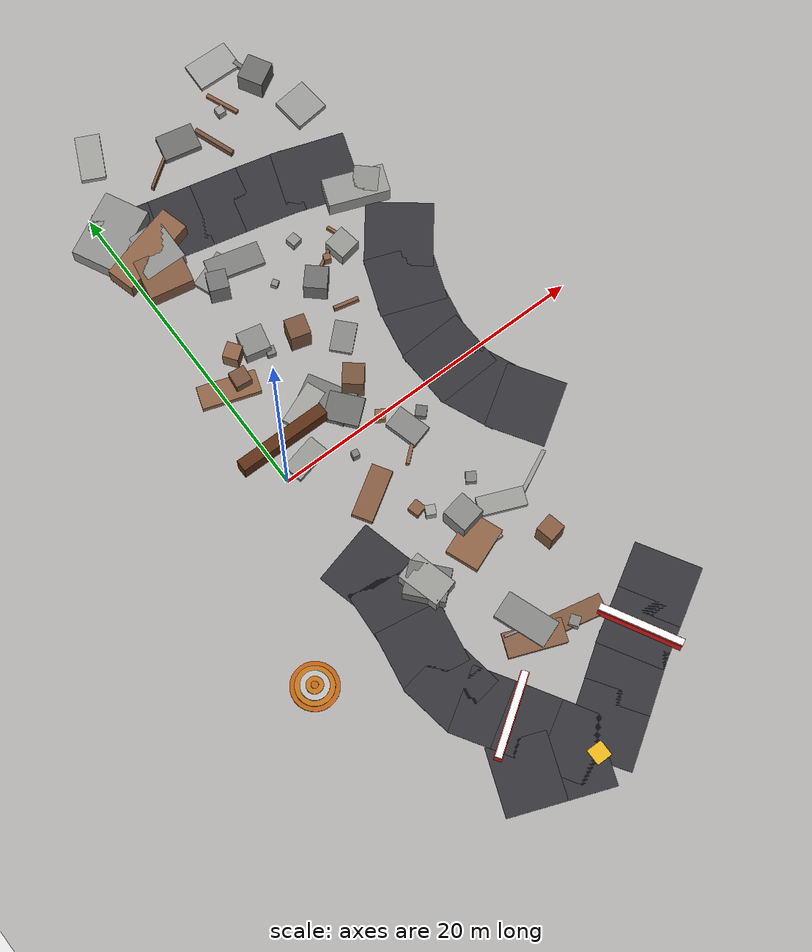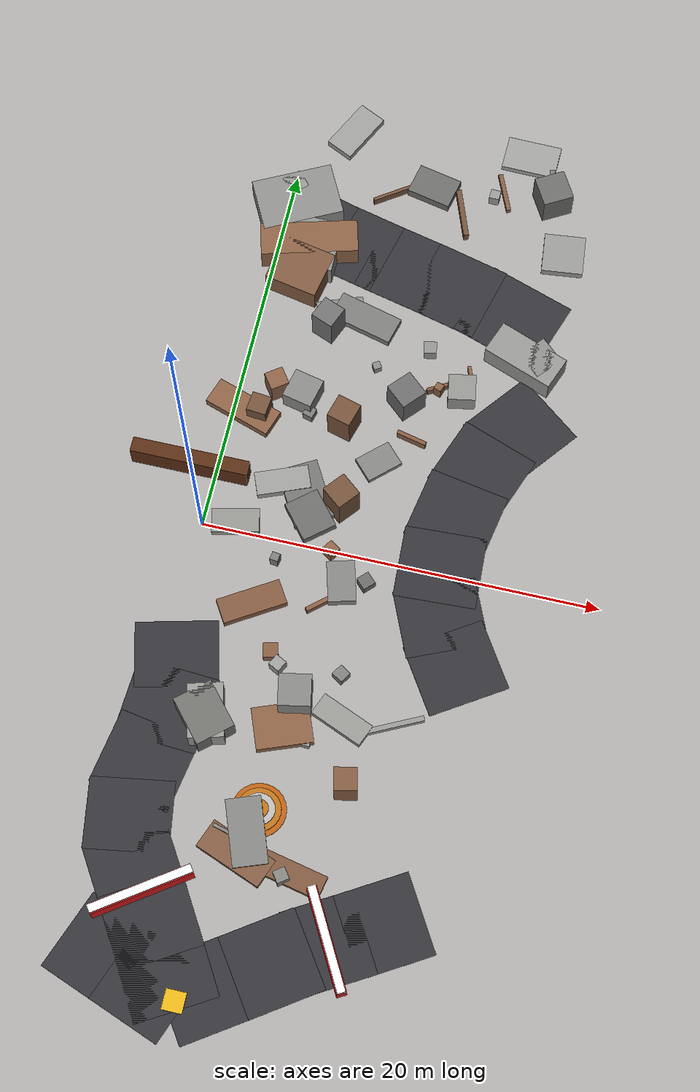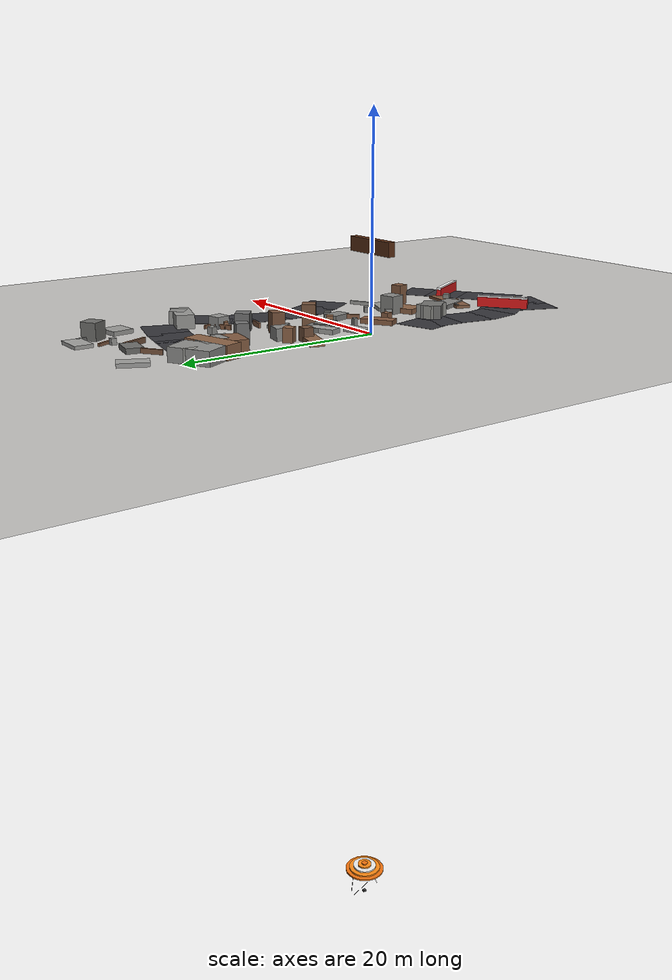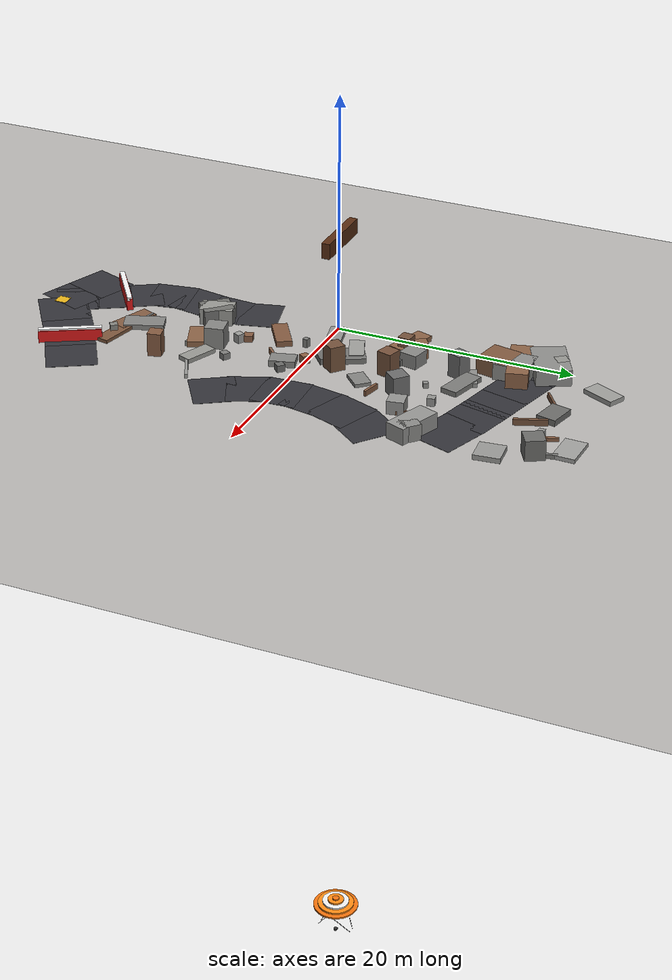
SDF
<sdf version="1.6">
 <world name="navitas_arena">
  <model name="ground_plane">
   <static>true</static>
   <link name="link">
    <collision name="collision">
     <geometry><plane><normal>0 0 1</normal><size>400 400</size></plane></geometry>
     <surface><friction><ode><mu>0.620</mu><mu2>0.620</mu2></ode></friction></surface>
    </collision>
    <visual name="visual">
     <cast_shadows>false</cast_shadows>
     <geometry><plane><normal>0 0 1</normal><size>400 400</size></plane></geometry>
     <material><ambient>0.250 0.230 0.200 1</ambient><diffuse>0.250 0.230 0.200 1</diffuse></material>
    </visual>
   </link>
  </model>
  <model name="road_orta_1_0">
   <static>true</static>
   <pose>3.244 -22.494 0.040 0 0 2.784</pose>
   <link name="link">
    <collision name="col"><geometry><box><size>3.792 4.100 0.020</size></box></geometry></collision>
    <visual name="vis">
     <geometry><box><size>3.792 4.100 0.020</size></box></geometry>
     <material><ambient>0.20 0.20 0.22 1</ambient><diffuse>0.20 0.20 0.22 1</diffuse></material>
    </visual>
   </link>
  </model>
  <model name="road_orta_1_1">
   <static>true</static>
   <pose>0.624 -21.514 0.040 0 0 2.783</pose>
   <link name="link">
    <collision name="col"><geometry><box><size>3.602 4.100 0.020</size></box></geometry></collision>
    <visual name="vis">
     <geometry><box><size>3.602 4.100 0.020</size></box></geometry>
     <material><ambient>0.20 0.20 0.22 1</ambient><diffuse>0.20 0.20 0.22 1</diffuse></material>
    </visual>
   </link>
  </model>
  <model name="road_orta_2_0">
   <static>true</static>
   <pose>3.960 -21.935 0.040 0 0 2.111</pose>
   <link name="link">
    <collision name="col"><geometry><box><size>3.383 4.100 0.020</size></box></geometry></collision>
    <visual name="vis">
     <geometry><box><size>3.383 4.100 0.020</size></box></geometry>
     <material><ambient>0.20 0.20 0.22 1</ambient><diffuse>0.20 0.20 0.22 1</diffuse></material>
    </visual>
   </link>
  </model>
  <model name="road_orta_2_1">
   <static>true</static>
   <pose>2.600 -19.687 0.040 0 0 2.119</pose>
   <link name="link">
    <collision name="col"><geometry><box><size>3.672 4.100 0.020</size></box></geometry></collision>
    <visual name="vis">
     <geometry><box><size>3.672 4.100 0.020</size></box></geometry>
     <material><ambient>0.20 0.20 0.22 1</ambient><diffuse>0.20 0.20 0.22 1</diffuse></material>
    </visual>
   </link>
  </model>
  <model name="road_orta_2_2">
   <static>true</static>
   <pose>1.193 -17.414 0.040 0 0 2.132</pose>
   <link name="link">
    <collision name="col"><geometry><box><size>3.474 4.100 0.020</size></box></geometry></collision>
    <visual name="vis">
     <geometry><box><size>3.474 4.100 0.020</size></box></geometry>
     <material><ambient>0.20 0.20 0.22 1</ambient><diffuse>0.20 0.20 0.22 1</diffuse></material>
    </visual>
   </link>
  </model>
  <model name="road_orta_2_3">
   <static>true</static>
   <pose>0.302 -15.042 0.040 0 0 1.731</pose>
   <link name="link">
    <collision name="col"><geometry><box><size>3.498 4.100 0.020</size></box></geometry></collision>
    <visual name="vis">
     <geometry><box><size>3.498 4.100 0.020</size></box></geometry>
     <material><ambient>0.20 0.20 0.22 1</ambient><diffuse>0.20 0.20 0.22 1</diffuse></material>
    </visual>
   </link>
  </model>
  <model name="road_orta_2_4">
   <static>true</static>
   <pose>0.334 -12.340 0.040 0 0 1.403</pose>
   <link name="link">
    <collision name="col"><geometry><box><size>3.780 4.100 0.020</size></box></geometry></collision>
    <visual name="vis">
     <geometry><box><size>3.780 4.100 0.020</size></box></geometry>
     <material><ambient>0.20 0.20 0.22 1</ambient><diffuse>0.20 0.20 0.22 1</diffuse></material>
    </visual>
   </link>
  </model>
  <model name="road_orta_2_5">
   <static>true</static>
   <pose>0.666 -9.460 0.040 0 0 1.509</pose>
   <link name="link">
    <collision name="col"><geometry><box><size>3.826 4.100 0.020</size></box></geometry></collision>
    <visual name="vis">
     <geometry><box><size>3.826 4.100 0.020</size></box></geometry>
     <material><ambient>0.20 0.20 0.22 1</ambient><diffuse>0.20 0.20 0.22 1</diffuse></material>
    </visual>
   </link>
  </model>
  <model name="road_orta_2_6">
   <static>true</static>
   <pose>0.462 -6.833 0.040 0 0 1.818</pose>
   <link name="link">
    <collision name="col"><geometry><box><size>3.307 4.100 0.020</size></box></geometry></collision>
    <visual name="vis">
     <geometry><box><size>3.307 4.100 0.020</size></box></geometry>
     <material><ambient>0.20 0.20 0.22 1</ambient><diffuse>0.20 0.20 0.22 1</diffuse></material>
    </visual>
   </link>
  </model>
  <model name="road_orta_3_0">
   <static>true</static>
   <pose>5.971 -22.070 0.040 0 0 0.595</pose>
   <link name="link">
    <collision name="col"><geometry><box><size>4.216 4.100 0.020</size></box></geometry></collision>
    <visual name="vis">
     <geometry><box><size>4.216 4.100 0.020</size></box></geometry>
     <material><ambient>0.20 0.20 0.22 1</ambient><diffuse>0.20 0.20 0.22 1</diffuse></material>
    </visual>
   </link>
  </model>
  <model name="road_orta_3_1">
   <static>true</static>
   <pose>8.537 -20.320 0.040 0 0 0.602</pose>
   <link name="link">
    <collision name="col"><geometry><box><size>3.795 4.100 0.020</size></box></geometry></collision>
    <visual name="vis">
     <geometry><box><size>3.795 4.100 0.020</size></box></geometry>
     <material><ambient>0.20 0.20 0.22 1</ambient><diffuse>0.20 0.20 0.22 1</diffuse></material>
    </visual>
   </link>
  </model>
  <model name="road_orta_3_2">
   <static>true</static>
   <pose>10.865 -18.833 0.040 0 0 0.531</pose>
   <link name="link">
    <collision name="col"><geometry><box><size>3.533 4.100 0.020</size></box></geometry></collision>
    <visual name="vis">
     <geometry><box><size>3.533 4.100 0.020</size></box></geometry>
     <material><ambient>0.20 0.20 0.22 1</ambient><diffuse>0.20 0.20 0.22 1</diffuse></material>
    </visual>
   </link>
  </model>
  <model name="road_orta_3_3">
   <static>true</static>
   <pose>13.203 -17.444 0.040 0 0 0.541</pose>
   <link name="link">
    <collision name="col"><geometry><box><size>3.705 4.100 0.020</size></box></geometry></collision>
    <visual name="vis">
     <geometry><box><size>3.705 4.100 0.020</size></box></geometry>
     <material><ambient>0.20 0.20 0.22 1</ambient><diffuse>0.20 0.20 0.22 1</diffuse></material>
    </visual>
   </link>
  </model>
  <model name="road_orta_3_8">
   <static>true</static>
   <pose>13.798 -4.500 0.040 0 0 2.146</pose>
   <link name="link">
    <collision name="col"><geometry><box><size>3.681 4.100 0.020</size></box></geometry></collision>
    <visual name="vis">
     <geometry><box><size>3.681 4.100 0.020</size></box></geometry>
     <material><ambient>0.20 0.20 0.22 1</ambient><diffuse>0.20 0.20 0.22 1</diffuse></material>
    </visual>
   </link>
  </model>
  <model name="road_orta_3_9">
   <static>true</static>
   <pose>12.531 -2.167 0.040 0 0 1.983</pose>
   <link name="link">
    <collision name="col"><geometry><box><size>3.447 4.100 0.020</size></box></geometry></collision>
    <visual name="vis">
     <geometry><box><size>3.447 4.100 0.020</size></box></geometry>
     <material><ambient>0.20 0.20 0.22 1</ambient><diffuse>0.20 0.20 0.22 1</diffuse></material>
    </visual>
   </link>
  </model>
  <model name="road_orta_3_10">
   <static>true</static>
   <pose>11.952 0.400 0.040 0 0 1.619</pose>
   <link name="link">
    <collision name="col"><geometry><box><size>3.703 4.100 0.020</size></box></geometry></collision>
    <visual name="vis">
     <geometry><box><size>3.703 4.100 0.020</size></box></geometry>
     <material><ambient>0.20 0.20 0.22 1</ambient><diffuse>0.20 0.20 0.22 1</diffuse></material>
    </visual>
   </link>
  </model>
  <model name="road_orta_3_11">
   <static>true</static>
   <pose>12.137 3.200 0.040 0 0 1.392</pose>
   <link name="link">
    <collision name="col"><geometry><box><size>3.745 4.100 0.020</size></box></geometry></collision>
    <visual name="vis">
     <geometry><box><size>3.745 4.100 0.020</size></box></geometry>
     <material><ambient>0.20 0.20 0.22 1</ambient><diffuse>0.20 0.20 0.22 1</diffuse></material>
    </visual>
   </link>
  </model>
  <model name="road_orta_3_12">
   <static>true</static>
   <pose>12.866 5.898 0.040 0 0 1.218</pose>
   <link name="link">
    <collision name="col"><geometry><box><size>3.666 4.100 0.020</size></box></geometry></collision>
    <visual name="vis">
     <geometry><box><size>3.666 4.100 0.020</size></box></geometry>
     <material><ambient>0.20 0.20 0.22 1</ambient><diffuse>0.20 0.20 0.22 1</diffuse></material>
    </visual>
   </link>
  </model>
  <model name="road_orta_3_13">
   <static>true</static>
   <pose>14.305 8.426 0.040 0 0 0.908</pose>
   <link name="link">
    <collision name="col"><geometry><box><size>4.023 4.100 0.020</size></box></geometry></collision>
    <visual name="vis">
     <geometry><box><size>4.023 4.100 0.020</size></box></geometry>
     <material><ambient>0.20 0.20 0.22 1</ambient><diffuse>0.20 0.20 0.22 1</diffuse></material>
    </visual>
   </link>
  </model>
  <model name="road_orta_3_16">
   <static>true</static>
   <pose>12.677 14.505 0.040 0 0 2.813</pose>
   <link name="link">
    <collision name="col"><geometry><box><size>4.605 4.100 0.020</size></box></geometry></collision>
    <visual name="vis">
     <geometry><box><size>4.605 4.100 0.020</size></box></geometry>
     <material><ambient>0.20 0.20 0.22 1</ambient><diffuse>0.20 0.20 0.22 1</diffuse></material>
    </visual>
   </link>
  </model>
  <model name="road_orta_3_17">
   <static>true</static>
   <pose>9.507 15.463 0.040 0 0 2.893</pose>
   <link name="link">
    <collision name="col"><geometry><box><size>3.823 4.100 0.020</size></box></geometry></collision>
    <visual name="vis">
     <geometry><box><size>3.823 4.100 0.020</size></box></geometry>
     <material><ambient>0.20 0.20 0.22 1</ambient><diffuse>0.20 0.20 0.22 1</diffuse></material>
    </visual>
   </link>
  </model>
  <model name="road_orta_3_18">
   <static>true</static>
   <pose>6.639 16.163 0.040 0 0 2.911</pose>
   <link name="link">
    <collision name="col"><geometry><box><size>3.882 4.100 0.020</size></box></geometry></collision>
    <visual name="vis">
     <geometry><box><size>3.882 4.100 0.020</size></box></geometry>
     <material><ambient>0.20 0.20 0.22 1</ambient><diffuse>0.20 0.20 0.22 1</diffuse></material>
    </visual>
   </link>
  </model>
  <model name="road_orta_3_19">
   <static>true</static>
   <pose>3.840 16.836 0.040 0 0 2.900</pose>
   <link name="link">
    <collision name="col"><geometry><box><size>3.674 4.100 0.020</size></box></geometry></collision>
    <visual name="vis">
     <geometry><box><size>3.674 4.100 0.020</size></box></geometry>
     <material><ambient>0.20 0.20 0.22 1</ambient><diffuse>0.20 0.20 0.22 1</diffuse></material>
    </visual>
   </link>
  </model>
  <model name="road_orta_3_20">
   <static>true</static>
   <pose>1.225 17.537 0.040 0 0 2.859</pose>
   <link name="link">
    <collision name="col"><geometry><box><size>3.543 4.100 0.020</size></box></geometry></collision>
    <visual name="vis">
     <geometry><box><size>3.543 4.100 0.020</size></box></geometry>
     <material><ambient>0.20 0.20 0.22 1</ambient><diffuse>0.20 0.20 0.22 1</diffuse></material>
    </visual>
   </link>
  </model>
  <model name="bar_orta_2">
   <static>true</static>
   <pose>1.878 -18.504 0.500 0 0 3.754</pose>
   <link name="link">
    <collision name="col"><geometry><box><size>5.100 0.500 1.000</size></box></geometry></collision>
    <visual name="vis">
     <geometry><box><size>5.100 0.500 1.000</size></box></geometry>
     <material><ambient>0.85 0.10 0.10 1</ambient><diffuse>0.85 0.10 0.10 1</diffuse></material>
    </visual>
   </link>
  </model>
  <model name="bar_orta_2b">
   <static>true</static>
   <pose>1.878 -18.504 1.000 0 0 3.754</pose>
   <link name="link">
    <collision name="col"><geometry><box><size>5.100 0.400 0.300</size></box></geometry></collision>
    <visual name="vis">
     <geometry><box><size>5.100 0.400 0.300</size></box></geometry>
     <material><ambient>0.95 0.95 0.95 1</ambient><diffuse>0.95 0.95 0.95 1</diffuse></material>
    </visual>
   </link>
  </model>
  <model name="blk_orta_2_0_0">
   <static>true</static>
   <pose>2.657 -9.725 0.675 0 0 2.285</pose>
   <link name="link">
    <collision name="col"><geometry><box><size>2.524 2.005 1.350</size></box></geometry></collision>
    <visual name="vis">
     <geometry><box><size>2.524 2.005 1.350</size></box></geometry>
     <material><ambient>0.44 0.44 0.43 1</ambient><diffuse>0.44 0.44 0.43 1</diffuse></material>
    </visual>
   </link>
  </model>
  <model name="blk_orta_2_0_2">
   <static>true</static>
   <pose>2.701 -9.611 0.675 0 0 1.836</pose>
   <link name="link">
    <collision name="col"><geometry><box><size>2.699 1.733 1.350</size></box></geometry></collision>
    <visual name="vis">
     <geometry><box><size>2.699 1.733 1.350</size></box></geometry>
     <material><ambient>0.59 0.59 0.57 1</ambient><diffuse>0.59 0.59 0.57 1</diffuse></material>
    </visual>
   </link>
  </model>
  <model name="blk_orta_2_2_4">
   <static>true</static>
   <pose>1.513 14.381 0.675 0 0 1.376</pose>
   <link name="link">
    <collision name="col"><geometry><box><size>2.535 2.758 1.350</size></box></geometry></collision>
    <visual name="vis">
     <geometry><box><size>2.535 2.758 1.350</size></box></geometry>
     <material><ambient>0.50 0.35 0.25 1</ambient><diffuse>0.50 0.35 0.25 1</diffuse></material>
    </visual>
   </link>
  </model>
  <model name="bar_orta_3">
   <static>true</static>
   <pose>10.793 -18.837 0.500 0 0 2.078</pose>
   <link name="link">
    <collision name="col"><geometry><box><size>5.100 0.500 1.000</size></box></geometry></collision>
    <visual name="vis">
     <geometry><box><size>5.100 0.500 1.000</size></box></geometry>
     <material><ambient>0.85 0.10 0.10 1</ambient><diffuse>0.85 0.10 0.10 1</diffuse></material>
    </visual>
   </link>
  </model>
  <model name="bar_orta_3b">
   <static>true</static>
   <pose>10.793 -18.837 1.000 0 0 2.078</pose>
   <link name="link">
    <collision name="col"><geometry><box><size>5.100 0.400 0.300</size></box></geometry></collision>
    <visual name="vis">
     <geometry><box><size>5.100 0.400 0.300</size></box></geometry>
     <material><ambient>0.95 0.95 0.95 1</ambient><diffuse>0.95 0.95 0.95 1</diffuse></material>
    </visual>
   </link>
  </model>
  <model name="blk_orta_3_1_2">
   <static>true</static>
   <pose>14.538 12.041 0.675 0 0 0.830</pose>
   <link name="link">
    <collision name="col"><geometry><box><size>1.532 1.532 1.350</size></box></geometry></collision>
    <visual name="vis">
     <geometry><box><size>1.532 1.532 1.350</size></box></geometry>
     <material><ambient>0.54 0.54 0.53 1</ambient><diffuse>0.54 0.54 0.53 1</diffuse></material>
    </visual>
   </link>
  </model>
  <model name="blk_orta_3_1_4">
   <static>true</static>
   <pose>13.790 12.033 0.675 0 0 2.778</pose>
   <link name="link">
    <collision name="col"><geometry><box><size>3.763 1.753 1.350</size></box></geometry></collision>
    <visual name="vis">
     <geometry><box><size>3.763 1.753 1.350</size></box></geometry>
     <material><ambient>0.58 0.58 0.57 1</ambient><diffuse>0.58 0.58 0.57 1</diffuse></material>
    </visual>
   </link>
  </model>
  <model name="blk_orta_3_2_0">
   <static>true</static>
   <pose>1.579 16.089 0.675 0 0 0.266</pose>
   <link name="link">
    <collision name="col"><geometry><box><size>4.996 1.764 1.350</size></box></geometry></collision>
    <visual name="vis">
     <geometry><box><size>4.996 1.764 1.350</size></box></geometry>
     <material><ambient>0.54 0.38 0.27 1</ambient><diffuse>0.54 0.38 0.27 1</diffuse></material>
    </visual>
   </link>
  </model>
  <model name="blk_orta_3_2_1">
   <static>true</static>
   <pose>0.437 18.267 0.675 0 0 0.473</pose>
   <link name="link">
    <collision name="col"><geometry><box><size>4.202 2.830 1.350</size></box></geometry></collision>
    <visual name="vis">
     <geometry><box><size>4.202 2.830 1.350</size></box></geometry>
     <material><ambient>0.55 0.55 0.54 1</ambient><diffuse>0.55 0.55 0.54 1</diffuse></material>
    </visual>
   </link>
  </model>
  <model name="blk_orta_3_2_4">
   <static>true</static>
   <pose>1.823 15.852 0.675 0 0 1.564</pose>
   <link name="link">
    <collision name="col"><geometry><box><size>2.803 2.633 1.350</size></box></geometry></collision>
    <visual name="vis">
     <geometry><box><size>2.803 2.633 1.350</size></box></geometry>
     <material><ambient>0.55 0.55 0.54 1</ambient><diffuse>0.55 0.55 0.54 1</diffuse></material>
    </visual>
   </link>
  </model>
  <model name="blk_orta_3_2_5">
   <static>true</static>
   <pose>0.141 19.080 0.675 0 0 2.270</pose>
   <link name="link">
    <collision name="col"><geometry><box><size>1.008 1.008 1.350</size></box></geometry></collision>
    <visual name="vis">
     <geometry><box><size>1.008 1.008 1.350</size></box></geometry>
     <material><ambient>0.58 0.58 0.56 1</ambient><diffuse>0.58 0.58 0.56 1</diffuse></material>
    </visual>
   </link>
  </model>
  <model name="deb_orta_0">
   <static>true</static>
   <pose>9.101 6.675 0.242 0 0 2.915</pose>
   <link name="link">
    <collision name="col"><geometry><box><size>1.557 0.203 0.483</size></box></geometry></collision>
    <visual name="vis">
     <geometry><box><size>1.557 0.203 0.483</size></box></geometry>
     <material><ambient>0.52 0.36 0.26 1</ambient><diffuse>0.52 0.36 0.26 1</diffuse></material>
    </visual>
   </link>
  </model>
  <model name="deb_orta_1">
   <static>true</static>
   <pose>11.762 23.875 0.167 0 0 3.115</pose>
   <link name="link">
    <collision name="col"><geometry><box><size>2.824 1.814 0.335</size></box></geometry></collision>
    <visual name="vis">
     <geometry><box><size>2.824 1.814 0.335</size></box></geometry>
     <material><ambient>0.62 0.62 0.61 1</ambient><diffuse>0.62 0.62 0.61 1</diffuse></material>
    </visual>
   </link>
  </model>
  <model name="deb_orta_5">
   <static>true</static>
   <pose>0.468 6.443 0.240 0 0 2.820</pose>
   <link name="link">
    <collision name="col"><geometry><box><size>3.572 1.400 0.480</size></box></geometry></collision>
    <visual name="vis">
     <geometry><box><size>3.572 1.400 0.480</size></box></geometry>
     <material><ambient>0.54 0.38 0.27 1</ambient><diffuse>0.54 0.38 0.27 1</diffuse></material>
    </visual>
   </link>
  </model>
  <model name="deb_orta_9">
   <static>true</static>
   <pose>11.363 10.521 0.172 0 0 1.929</pose>
   <link name="link">
    <collision name="col"><geometry><box><size>1.535 0.174 0.344</size></box></geometry></collision>
    <visual name="vis">
     <geometry><box><size>1.535 0.174 0.344</size></box></geometry>
     <material><ambient>0.55 0.38 0.27 1</ambient><diffuse>0.55 0.38 0.27 1</diffuse></material>
    </visual>
   </link>
  </model>
  <model name="deb_orta_14">
   <static>true</static>
   <pose>5.126 1.499 0.246 0 0 2.266</pose>
   <link name="link">
    <collision name="col"><geometry><box><size>2.123 1.776 0.491</size></box></geometry></collision>
    <visual name="vis">
     <geometry><box><size>2.123 1.776 0.491</size></box></geometry>
     <material><ambient>0.42 0.42 0.41 1</ambient><diffuse>0.42 0.42 0.41 1</diffuse></material>
    </visual>
   </link>
  </model>
  <model name="deb_orta_23">
   <static>true</static>
   <pose>1.584 0.418 0.205 0 0 0.226</pose>
   <link name="link">
    <collision name="col"><geometry><box><size>2.364 1.262 0.410</size></box></geometry></collision>
    <visual name="vis">
     <geometry><box><size>2.364 1.262 0.410</size></box></geometry>
     <material><ambient>0.57 0.57 0.56 1</ambient><diffuse>0.57 0.57 0.56 1</diffuse></material>
    </visual>
   </link>
  </model>
  <model name="deb_orta_27">
   <static>true</static>
   <pose>5.648 -15.016 0.205 0 0 2.886</pose>
   <link name="link">
    <collision name="col"><geometry><box><size>2.698 0.161 0.409</size></box></geometry></collision>
    <visual name="vis">
     <geometry><box><size>2.698 0.161 0.409</size></box></geometry>
     <material><ambient>0.51 0.51 0.50 1</ambient><diffuse>0.51 0.51 0.50 1</diffuse></material>
    </visual>
   </link>
  </model>
  <model name="deb_orta_28">
   <static>true</static>
   <pose>8.386 8.624 0.866 0 0 2.416</pose>
   <link name="link">
    <collision name="col"><geometry><box><size>1.392 1.392 1.731</size></box></geometry></collision>
    <visual name="vis">
     <geometry><box><size>1.392 1.392 1.731</size></box></geometry>
     <material><ambient>0.42 0.42 0.42 1</ambient><diffuse>0.42 0.42 0.42 1</diffuse></material>
    </visual>
   </link>
  </model>
  <model name="deb_orta_40">
   <static>true</static>
   <pose>7.758 5.125 0.143 0 0 0.751</pose>
   <link name="link">
    <collision name="col"><geometry><box><size>1.893 1.353 0.287</size></box></geometry></collision>
    <visual name="vis">
     <geometry><box><size>1.893 1.353 0.287</size></box></geometry>
     <material><ambient>0.51 0.51 0.50 1</ambient><diffuse>0.51 0.51 0.50 1</diffuse></material>
    </visual>
   </link>
  </model>
  <model name="deb_orta_44">
   <static>true</static>
   <pose>5.635 6.703 1.021 0 0 2.865</pose>
   <link name="link">
    <collision name="col"><geometry><box><size>1.247 1.247 2.043</size></box></geometry></collision>
    <visual name="vis">
     <geometry><box><size>1.247 1.247 2.043</size></box></geometry>
     <material><ambient>0.46 0.32 0.23 1</ambient><diffuse>0.46 0.32 0.23 1</diffuse></material>
    </visual>
   </link>
  </model>
  <model name="deb_orta_47">
   <static>true</static>
   <pose>13.319 21.555 0.841 0 0 2.094</pose>
   <link name="link">
    <collision name="col"><geometry><box><size>1.590 1.590 1.682</size></box></geometry></collision>
    <visual name="vis">
     <geometry><box><size>1.590 1.590 1.682</size></box></geometry>
     <material><ambient>0.42 0.42 0.41 1</ambient><diffuse>0.42 0.42 0.41 1</diffuse></material>
    </visual>
   </link>
  </model>
  <model name="deb_orta_48">
   <static>true</static>
   <pose>5.940 -14.651 0.215 0 0 1.923</pose>
   <link name="link">
    <collision name="col"><geometry><box><size>3.305 1.705 0.429</size></box></geometry></collision>
    <visual name="vis">
     <geometry><box><size>3.305 1.705 0.429</size></box></geometry>
     <material><ambient>0.51 0.51 0.50 1</ambient><diffuse>0.51 0.51 0.50 1</diffuse></material>
    </visual>
   </link>
  </model>
  <model name="deb_orta_55">
   <static>true</static>
   <pose>8.909 19.731 0.252 0 0 1.927</pose>
   <link name="link">
    <collision name="col"><geometry><box><size>2.677 0.265 0.504</size></box></geometry></collision>
    <visual name="vis">
     <geometry><box><size>2.677 0.265 0.504</size></box></geometry>
     <material><ambient>0.45 0.32 0.23 1</ambient><diffuse>0.45 0.32 0.23 1</diffuse></material>
    </visual>
   </link>
  </model>
  <model name="deb_orta_59">
   <static>true</static>
   <pose>11.600 -8.000 0.173 0 0 0.460</pose>
   <link name="link">
    <collision name="col"><geometry><box><size>2.828 0.251 0.345</size></box></geometry></collision>
    <visual name="vis">
     <geometry><box><size>2.828 0.251 0.345</size></box></geometry>
     <material><ambient>0.58 0.58 0.57 1</ambient><diffuse>0.58 0.58 0.57 1</diffuse></material>
    </visual>
   </link>
  </model>
  <model name="deb_orta_60">
   <static>true</static>
   <pose>6.557 -0.076 0.337 0 0 2.541</pose>
   <link name="link">
    <collision name="col"><geometry><box><size>0.629 0.629 0.675</size></box></geometry></collision>
    <visual name="vis">
     <geometry><box><size>0.629 0.629 0.675</size></box></geometry>
     <material><ambient>0.55 0.38 0.27 1</ambient><diffuse>0.55 0.38 0.27 1</diffuse></material>
    </visual>
   </link>
  </model>
  <model name="deb_orta_65">
   <static>true</static>
   <pose>3.346 2.998 0.230 0 0 0.381</pose>
   <link name="link">
    <collision name="col"><geometry><box><size>2.706 1.227 0.460</size></box></geometry></collision>
    <visual name="vis">
     <geometry><box><size>2.706 1.227 0.460</size></box></geometry>
     <material><ambient>0.61 0.61 0.60 1</ambient><diffuse>0.61 0.61 0.60 1</diffuse></material>
    </visual>
   </link>
  </model>
  <model name="deb_orta_66">
   <static>true</static>
   <pose>3.397 -3.545 0.245 0 0 0.558</pose>
   <link name="link">
    <collision name="col"><geometry><box><size>3.235 1.284 0.490</size></box></geometry></collision>
    <visual name="vis">
     <geometry><box><size>3.235 1.284 0.490</size></box></geometry>
     <material><ambient>0.51 0.35 0.25 1</ambient><diffuse>0.51 0.35 0.25 1</diffuse></material>
    </visual>
   </link>
  </model>
  <model name="deb_orta_82">
   <static>true</static>
   <pose>3.986 -1.120 0.362 0 0 1.412</pose>
   <link name="link">
    <collision name="col"><geometry><box><size>0.417 0.417 0.724</size></box></geometry></collision>
    <visual name="vis">
     <geometry><box><size>0.417 0.417 0.724</size></box></geometry>
     <material><ambient>0.48 0.48 0.47 1</ambient><diffuse>0.48 0.48 0.47 1</diffuse></material>
    </visual>
   </link>
  </model>
  <model name="deb_orta_86">
   <static>true</static>
   <pose>13.189 22.568 0.177 0 0 1.845</pose>
   <link name="link">
    <collision name="col"><geometry><box><size>1.612 0.262 0.353</size></box></geometry></collision>
    <visual name="vis">
     <geometry><box><size>1.612 0.262 0.353</size></box></geometry>
     <material><ambient>0.46 0.46 0.45 1</ambient><diffuse>0.46 0.46 0.45 1</diffuse></material>
    </visual>
   </link>
  </model>
  <model name="deb_orta_89">
   <static>true</static>
   <pose>9.049 -8.328 0.181 0 0 2.751</pose>
   <link name="link">
    <collision name="col"><geometry><box><size>2.817 1.157 0.363</size></box></geometry></collision>
    <visual name="vis">
     <geometry><box><size>2.817 1.157 0.363</size></box></geometry>
     <material><ambient>0.59 0.59 0.57 1</ambient><diffuse>0.59 0.59 0.57 1</diffuse></material>
    </visual>
   </link>
  </model>
  <model name="deb_orta_90">
   <static>true</static>
   <pose>6.503 2.439 1.065 0 0 0.886</pose>
   <link name="link">
    <collision name="col"><geometry><box><size>1.289 1.289 2.129</size></box></geometry></collision>
    <visual name="vis">
     <geometry><box><size>1.289 1.289 2.129</size></box></geometry>
     <material><ambient>0.45 0.32 0.23 1</ambient><diffuse>0.45 0.32 0.23 1</diffuse></material>
    </visual>
   </link>
  </model>
  <model name="deb_orta_91">
   <static>true</static>
   <pose>1.868 7.936 0.688 0 0 2.200</pose>
   <link name="link">
    <collision name="col"><geometry><box><size>0.957 0.957 1.376</size></box></geometry></collision>
    <visual name="vis">
     <geometry><box><size>0.957 0.957 1.376</size></box></geometry>
     <material><ambient>0.54 0.38 0.27 1</ambient><diffuse>0.54 0.38 0.27 1</diffuse></material>
    </visual>
   </link>
  </model>
  <model name="deb_orta_92">
   <static>true</static>
   <pose>8.027 -16.366 0.374 0 0 0.631</pose>
   <link name="link">
    <collision name="col"><geometry><box><size>0.611 0.611 0.749</size></box></geometry></collision>
    <visual name="vis">
     <geometry><box><size>0.611 0.611 0.749</size></box></geometry>
     <material><ambient>0.51 0.51 0.49 1</ambient><diffuse>0.51 0.51 0.49 1</diffuse></material>
    </visual>
   </link>
  </model>
  <model name="deb_orta_95">
   <static>true</static>
   <pose>9.985 -11.512 0.973 0 0 1.786</pose>
   <link name="link">
    <collision name="col"><geometry><box><size>1.119 1.119 1.945</size></box></geometry></collision>
    <visual name="vis">
     <geometry><box><size>1.119 1.119 1.945</size></box></geometry>
     <material><ambient>0.51 0.35 0.25 1</ambient><diffuse>0.51 0.35 0.25 1</diffuse></material>
    </visual>
   </link>
  </model>
  <model name="deb_orta_100">
   <static>true</static>
   <pose>1.321 6.437 0.643 0 0 3.035</pose>
   <link name="link">
    <collision name="col"><geometry><box><size>1.011 1.011 1.286</size></box></geometry></collision>
    <visual name="vis">
     <geometry><box><size>1.011 1.011 1.286</size></box></geometry>
     <material><ambient>0.45 0.32 0.23 1</ambient><diffuse>0.45 0.32 0.23 1</diffuse></material>
    </visual>
   </link>
  </model>
  <model name="deb_orta_104">
   <static>true</static>
   <pose>10.792 21.534 0.145 0 0 1.971</pose>
   <link name="link">
    <collision name="col"><geometry><box><size>2.155 0.223 0.291</size></box></geometry></collision>
    <visual name="vis">
     <geometry><box><size>2.155 0.223 0.291</size></box></geometry>
     <material><ambient>0.52 0.36 0.26 1</ambient><diffuse>0.52 0.36 0.26 1</diffuse></material>
    </visual>
   </link>
  </model>
  <model name="deb_orta_109">
   <static>true</static>
   <pose>5.180 20.142 0.232 0 0 0.604</pose>
   <link name="link">
    <collision name="col"><geometry><box><size>2.342 0.167 0.465</size></box></geometry></collision>
    <visual name="vis">
     <geometry><box><size>2.342 0.167 0.465</size></box></geometry>
     <material><ambient>0.46 0.32 0.23 1</ambient><diffuse>0.46 0.32 0.23 1</diffuse></material>
    </visual>
   </link>
  </model>
  <model name="deb_orta_135">
   <static>true</static>
   <pose>6.636 -7.805 0.894 0 0 1.760</pose>
   <link name="link">
    <collision name="col"><geometry><box><size>1.593 1.593 1.788</size></box></geometry></collision>
    <visual name="vis">
     <geometry><box><size>1.593 1.593 1.788</size></box></geometry>
     <material><ambient>0.52 0.52 0.51 1</ambient><diffuse>0.52 0.52 0.51 1</diffuse></material>
    </visual>
   </link>
  </model>
  <model name="deb_orta_138">
   <static>true</static>
   <pose>3.794 6.902 0.261 0 0 1.309</pose>
   <link name="link">
    <collision name="col"><geometry><box><size>0.538 0.538 0.522</size></box></geometry></collision>
    <visual name="vis">
     <geometry><box><size>0.538 0.538 0.522</size></box></geometry>
     <material><ambient>0.47 0.47 0.46 1</ambient><diffuse>0.47 0.47 0.46 1</diffuse></material>
    </visual>
   </link>
  </model>
  <model name="deb_orta_140">
   <static>true</static>
   <pose>7.421 -1.559 0.263 0 0 1.840</pose>
   <link name="link">
    <collision name="col"><geometry><box><size>2.101 1.388 0.526</size></box></geometry></collision>
    <visual name="vis">
     <geometry><box><size>2.101 1.388 0.526</size></box></geometry>
     <material><ambient>0.51 0.51 0.50 1</ambient><diffuse>0.51 0.51 0.50 1</diffuse></material>
    </visual>
   </link>
  </model>
  <model name="deb_orta_141">
   <static>true</static>
   <pose>9.865 9.605 0.364 0 0 2.811</pose>
   <link name="link">
    <collision name="col"><geometry><box><size>0.400 0.400 0.728</size></box></geometry></collision>
    <visual name="vis">
     <geometry><box><size>0.400 0.400 0.728</size></box></geometry>
     <material><ambient>0.53 0.37 0.26 1</ambient><diffuse>0.53 0.37 0.26 1</diffuse></material>
    </visual>
   </link>
  </model>
  <model name="deb_orta_142">
   <static>true</static>
   <pose>2.365 23.330 0.193 0 0 1.119</pose>
   <link name="link">
    <collision name="col"><geometry><box><size>2.849 1.490 0.386</size></box></geometry></collision>
    <visual name="vis">
     <geometry><box><size>2.849 1.490 0.386</size></box></geometry>
     <material><ambient>0.61 0.61 0.60 1</ambient><diffuse>0.61 0.61 0.60 1</diffuse></material>
    </visual>
   </link>
  </model>
  <model name="deb_orta_145">
   <static>true</static>
   <pose>14.514 18.581 0.206 0 0 1.676</pose>
   <link name="link">
    <collision name="col"><geometry><box><size>2.135 2.122 0.412</size></box></geometry></collision>
    <visual name="vis">
     <geometry><box><size>2.135 2.122 0.412</size></box></geometry>
     <material><ambient>0.59 0.59 0.58 1</ambient><diffuse>0.59 0.59 0.58 1</diffuse></material>
    </visual>
   </link>
  </model>
  <model name="deb_orta_151">
   <static>true</static>
   <pose>10.350 21.112 0.300 0 0 3.104</pose>
   <link name="link">
    <collision name="col"><geometry><box><size>0.518 0.518 0.599</size></box></geometry></collision>
    <visual name="vis">
     <geometry><box><size>0.518 0.518 0.599</size></box></geometry>
     <material><ambient>0.59 0.59 0.58 1</ambient><diffuse>0.59 0.59 0.58 1</diffuse></material>
    </visual>
   </link>
  </model>
  <model name="deb_orta_154">
   <static>true</static>
   <pose>3.612 11.823 0.993 0 0 1.187</pose>
   <link name="link">
    <collision name="col"><geometry><box><size>1.199 1.199 1.986</size></box></geometry></collision>
    <visual name="vis">
     <geometry><box><size>1.199 1.199 1.986</size></box></geometry>
     <material><ambient>0.44 0.44 0.44 1</ambient><diffuse>0.44 0.44 0.44 1</diffuse></material>
    </visual>
   </link>
  </model>
  <model name="deb_orta_156">
   <static>true</static>
   <pose>7.145 20.950 0.254 0 0 2.926</pose>
   <link name="link">
    <collision name="col"><geometry><box><size>2.308 1.636 0.507</size></box></geometry></collision>
    <visual name="vis">
     <geometry><box><size>2.308 1.636 0.507</size></box></geometry>
     <material><ambient>0.42 0.42 0.41 1</ambient><diffuse>0.42 0.42 0.41 1</diffuse></material>
    </visual>
   </link>
  </model>
  <model name="deb_orta_161">
   <static>true</static>
   <pose>6.978 -9.865 0.211 0 0 3.094</pose>
   <link name="link">
    <collision name="col"><geometry><box><size>1.728 0.219 0.422</size></box></geometry></collision>
    <visual name="vis">
     <geometry><box><size>1.728 0.219 0.422</size></box></geometry>
     <material><ambient>0.56 0.56 0.54 1</ambient><diffuse>0.56 0.56 0.54 1</diffuse></material>
    </visual>
   </link>
  </model>
  <model name="deb_orta_168">
   <static>true</static>
   <pose>10.034 9.851 0.224 0 0 0.511</pose>
   <link name="link">
    <collision name="col"><geometry><box><size>1.720 0.171 0.449</size></box></geometry></collision>
    <visual name="vis">
     <geometry><box><size>1.720 0.171 0.449</size></box></geometry>
     <material><ambient>0.49 0.34 0.24 1</ambient><diffuse>0.49 0.34 0.24 1</diffuse></material>
    </visual>
   </link>
  </model>
  <model name="deb_orta_176">
   <static>true</static>
   <pose>4.899 -5.778 0.276 0 0 1.827</pose>
   <link name="link">
    <collision name="col"><geometry><box><size>0.734 0.734 0.551</size></box></geometry></collision>
    <visual name="vis">
     <geometry><box><size>0.734 0.734 0.551</size></box></geometry>
     <material><ambient>0.52 0.36 0.26 1</ambient><diffuse>0.52 0.36 0.26 1</diffuse></material>
    </visual>
   </link>
  </model>
  <model name="deb_orta_183">
   <static>true</static>
   <pose>6.670 -2.828 0.223 0 0 0.713</pose>
   <link name="link">
    <collision name="col"><geometry><box><size>1.553 0.218 0.445</size></box></geometry></collision>
    <visual name="vis">
     <geometry><box><size>1.553 0.218 0.445</size></box></geometry>
     <material><ambient>0.53 0.37 0.27 1</ambient><diffuse>0.53 0.37 0.27 1</diffuse></material>
    </visual>
   </link>
  </model>
  <model name="deb_orta_184">
   <static>true</static>
   <pose>8.957 11.683 0.330 0 0 1.776</pose>
   <link name="link">
    <collision name="col"><geometry><box><size>0.636 0.636 0.660</size></box></geometry></collision>
    <visual name="vis">
     <geometry><box><size>0.636 0.636 0.660</size></box></geometry>
     <material><ambient>0.56 0.56 0.55 1</ambient><diffuse>0.56 0.56 0.55 1</diffuse></material>
    </visual>
   </link>
  </model>
  <model name="deb_orta_204">
   <static>true</static>
   <pose>3.994 12.902 0.167 0 0 0.359</pose>
   <link name="link">
    <collision name="col"><geometry><box><size>2.418 1.182 0.333</size></box></geometry></collision>
    <visual name="vis">
     <geometry><box><size>2.418 1.182 0.333</size></box></geometry>
     <material><ambient>0.55 0.55 0.54 1</ambient><diffuse>0.55 0.55 0.54 1</diffuse></material>
    </visual>
   </link>
  </model>
  <model name="deb_orta_205">
   <static>true</static>
   <pose>5.355 12.708 0.211 0 0 2.886</pose>
   <link name="link">
    <collision name="col"><geometry><box><size>3.347 1.446 0.422</size></box></geometry></collision>
    <visual name="vis">
     <geometry><box><size>3.347 1.446 0.422</size></box></geometry>
     <material><ambient>0.48 0.48 0.47 1</ambient><diffuse>0.48 0.48 0.47 1</diffuse></material>
    </visual>
   </link>
  </model>
  <model name="deb_orta_206">
   <static>true</static>
   <pose>8.307 -16.088 0.145 0 0 2.935</pose>
   <link name="link">
    <collision name="col"><geometry><box><size>3.524 1.173 0.289</size></box></geometry></collision>
    <visual name="vis">
     <geometry><box><size>3.524 1.173 0.289</size></box></geometry>
     <material><ambient>0.49 0.34 0.24 1</ambient><diffuse>0.49 0.34 0.24 1</diffuse></material>
    </visual>
   </link>
  </model>
  <model name="deb_orta_208">
   <static>true</static>
   <pose>8.504 -6.156 0.268 0 0 0.998</pose>
   <link name="link">
    <collision name="col"><geometry><box><size>0.622 0.622 0.536</size></box></geometry></collision>
    <visual name="vis">
     <geometry><box><size>0.622 0.622 0.536</size></box></geometry>
     <material><ambient>0.49 0.49 0.48 1</ambient><diffuse>0.49 0.49 0.48 1</diffuse></material>
    </visual>
   </link>
  </model>
  <model name="deb_orta_212">
   <static>true</static>
   <pose>6.347 -9.282 0.253 0 0 0.368</pose>
   <link name="link">
    <collision name="col"><geometry><box><size>2.776 2.095 0.507</size></box></geometry></collision>
    <visual name="vis">
     <geometry><box><size>2.776 2.095 0.507</size></box></geometry>
     <material><ambient>0.54 0.38 0.27 1</ambient><diffuse>0.54 0.38 0.27 1</diffuse></material>
    </visual>
   </link>
  </model>
  <model name="deb_orta_216">
   <static>true</static>
   <pose>8.597 -1.297 0.288 0 0 0.789</pose>
   <link name="link">
    <collision name="col"><geometry><box><size>0.671 0.671 0.577</size></box></geometry></collision>
    <visual name="vis">
     <geometry><box><size>0.671 0.671 0.577</size></box></geometry>
     <material><ambient>0.41 0.41 0.40 1</ambient><diffuse>0.41 0.41 0.40 1</diffuse></material>
    </visual>
   </link>
  </model>
  <model name="deb_orta_219">
   <static>true</static>
   <pose>11.020 9.669 0.557 0 0 1.746</pose>
   <link name="link">
    <collision name="col"><geometry><box><size>1.381 1.381 1.115</size></box></geometry></collision>
    <visual name="vis">
     <geometry><box><size>1.381 1.381 1.115</size></box></geometry>
     <material><ambient>0.57 0.57 0.56 1</ambient><diffuse>0.57 0.57 0.56 1</diffuse></material>
    </visual>
   </link>
  </model>
  <model name="deb_orta_220">
   <static>true</static>
   <pose>6.506 10.199 0.212 0 0 2.153</pose>
   <link name="link">
    <collision name="col"><geometry><box><size>0.400 0.400 0.425</size></box></geometry></collision>
    <visual name="vis">
     <geometry><box><size>0.400 0.400 0.425</size></box></geometry>
     <material><ambient>0.53 0.53 0.52 1</ambient><diffuse>0.53 0.53 0.52 1</diffuse></material>
    </visual>
   </link>
  </model>
  <model name="deb_orta_222">
   <static>true</static>
   <pose>5.410 -6.390 0.371 0 0 2.665</pose>
   <link name="link">
    <collision name="col"><geometry><box><size>0.605 0.605 0.743</size></box></geometry></collision>
    <visual name="vis">
     <geometry><box><size>0.605 0.605 0.743</size></box></geometry>
     <material><ambient>0.61 0.61 0.60 1</ambient><diffuse>0.61 0.61 0.60 1</diffuse></material>
    </visual>
   </link>
  </model>
  <model name="deb_orta_223">
   <static>true</static>
   <pose>3.255 7.811 0.582 0 0 1.348</pose>
   <link name="link">
    <collision name="col"><geometry><box><size>1.554 1.554 1.163</size></box></geometry></collision>
    <visual name="vis">
     <geometry><box><size>1.554 1.554 1.163</size></box></geometry>
     <material><ambient>0.53 0.53 0.52 1</ambient><diffuse>0.53 0.53 0.52 1</diffuse></material>
    </visual>
   </link>
  </model>
  <model name="deb_orta_224">
   <static>true</static>
   <pose>5.690 -15.749 0.152 0 0 2.773</pose>
   <link name="link">
    <collision name="col"><geometry><box><size>3.523 1.496 0.304</size></box></geometry></collision>
    <visual name="vis">
     <geometry><box><size>3.523 1.496 0.304</size></box></geometry>
     <material><ambient>0.51 0.36 0.26 1</ambient><diffuse>0.51 0.36 0.26 1</diffuse></material>
    </visual>
   </link>
  </model>
  <model name="deb_orta_228">
   <static>true</static>
   <pose>4.629 2.602 0.215 0 0 2.090</pose>
   <link name="link">
    <collision name="col"><geometry><box><size>3.121 2.043 0.429</size></box></geometry></collision>
    <visual name="vis">
     <geometry><box><size>3.121 2.043 0.429</size></box></geometry>
     <material><ambient>0.45 0.45 0.44 1</ambient><diffuse>0.45 0.45 0.44 1</diffuse></material>
    </visual>
   </link>
  </model>
  <model name="kb_orta">
   <static>true</static>
   <pose>4.599 -23.000 0.070 0 0 0.000</pose>
   <link name="link">
    <collision name="col"><geometry><box><size>1.000 1.000 0.040</size></box></geometry></collision>
    <visual name="vis">
     <geometry><box><size>1.000 1.000 0.040</size></box></geometry>
     <material><ambient>0.90 0.70 0.10 1</ambient><diffuse>0.90 0.70 0.10 1</diffuse></material>
    </visual>
   </link>
  </model>
  <model name="parachute">
   <static>true</static>
   <pose>0 0 -60 0 0 0</pose>
   <link name="link">
    <visual name="dome0">
     <geometry><cylinder><radius>2.10</radius><length>0.16</length></cylinder></geometry>
     <material><ambient>0.95 0.45 0.05 1</ambient><diffuse>0.95 0.45 0.05 1</diffuse></material>
    </visual>
    <visual name="dome1">
     <pose>0 0 0.22 0 0 0</pose>
     <geometry><cylinder><radius>1.70</radius><length>0.16</length></cylinder></geometry>
     <material><ambient>1.0 0.55 0.08 1</ambient><diffuse>1.0 0.55 0.08 1</diffuse></material>
    </visual>
    <visual name="dome2">
     <pose>0 0 0.42 0 0 0</pose>
     <geometry><cylinder><radius>1.25</radius><length>0.16</length></cylinder></geometry>
     <material><ambient>0.95 0.95 0.95 1</ambient><diffuse>0.95 0.95 0.95 1</diffuse></material>
    </visual>
    <visual name="dome3">
     <pose>0 0 0.58 0 0 0</pose>
     <geometry><cylinder><radius>0.75</radius><length>0.16</length></cylinder></geometry>
     <material><ambient>1.0 0.55 0.08 1</ambient><diffuse>1.0 0.55 0.08 1</diffuse></material>
    </visual>
    <visual name="dome4">
     <pose>0 0 0.70 0 0 0</pose>
     <geometry><cylinder><radius>0.32</radius><length>0.16</length></cylinder></geometry>
     <material><ambient>0.95 0.45 0.05 1</ambient><diffuse>0.95 0.45 0.05 1</diffuse></material>
    </visual>
    <visual name="line0">
     <pose>0.90 0.90 -1.5 0.500 0.500 0</pose>
     <geometry><cylinder><radius>0.02</radius><length>3.0</length></cylinder></geometry>
     <material><ambient>0.1 0.1 0.1 1</ambient><diffuse>0.15 0.15 0.15 1</diffuse></material>
    </visual>
    <visual name="line1">
     <pose>0.90 -0.90 -1.5 -0.500 0.500 0</pose>
     <geometry><cylinder><radius>0.02</radius><length>3.0</length></cylinder></geometry>
     <material><ambient>0.1 0.1 0.1 1</ambient><diffuse>0.15 0.15 0.15 1</diffuse></material>
    </visual>
    <visual name="line2">
     <pose>-0.90 0.90 -1.5 0.500 -0.500 0</pose>
     <geometry><cylinder><radius>0.02</radius><length>3.0</length></cylinder></geometry>
     <material><ambient>0.1 0.1 0.1 1</ambient><diffuse>0.15 0.15 0.15 1</diffuse></material>
    </visual>
    <visual name="line3">
     <pose>-0.90 -0.90 -1.5 -0.500 -0.500 0</pose>
     <geometry><cylinder><radius>0.02</radius><length>3.0</length></cylinder></geometry>
     <material><ambient>0.1 0.1 0.1 1</ambient><diffuse>0.15 0.15 0.15 1</diffuse></material>
    </visual>
    <visual name="harness">
     <pose>0 0 -3.0 0 0 0</pose>
     <geometry><box><size>0.3 0.3 0.2</size></box></geometry>
     <material><ambient>0.2 0.2 0.2 1</ambient><diffuse>0.25 0.25 0.25 1</diffuse></material>
    </visual>
   </link>
  </model>
  <model name="aftershock_barrier">
   <pose>0.000 0.000 8.000 0 0 0.000</pose>
   <link name="link">
    <gravity>false</gravity>
    <kinematic>true</kinematic>
    <collision name="col"><geometry><box><size>5.500 0.700 1.300</size></box></geometry></collision>
    <visual name="vis">
     <geometry><box><size>5.500 0.700 1.300</size></box></geometry>
     <material><ambient>0.35 0.18 0.08 1</ambient><diffuse>0.35 0.18 0.08 1</diffuse></material>
    </visual>
   </link>
  </model>
 </world>
</sdf>
